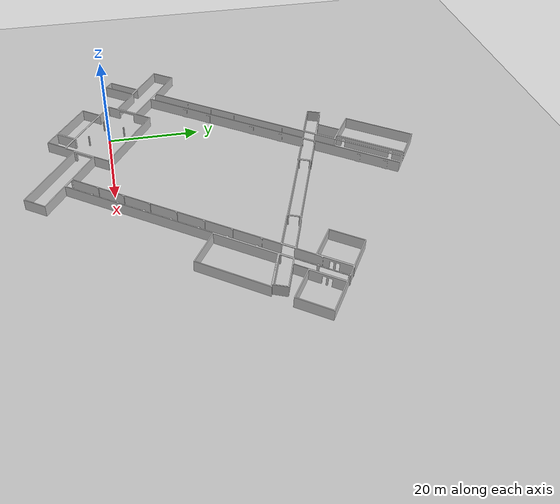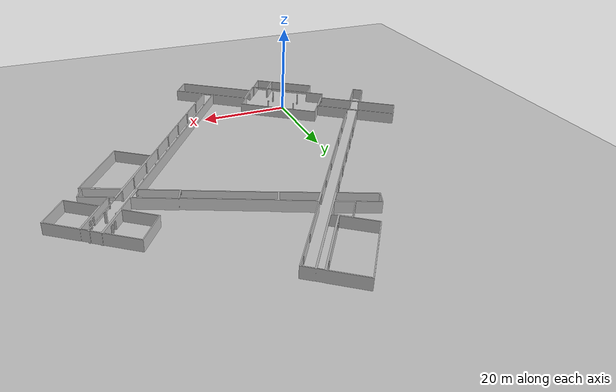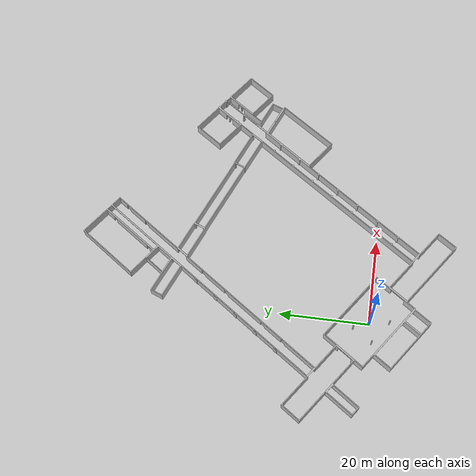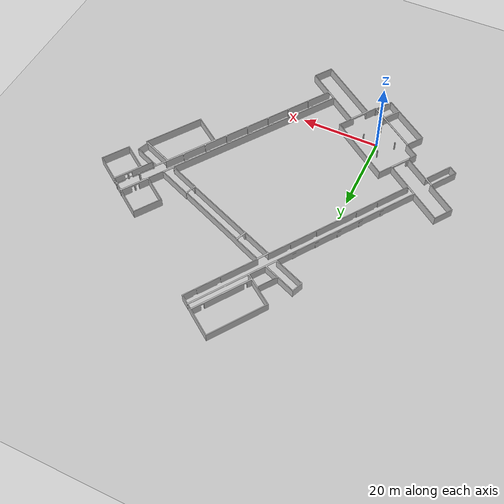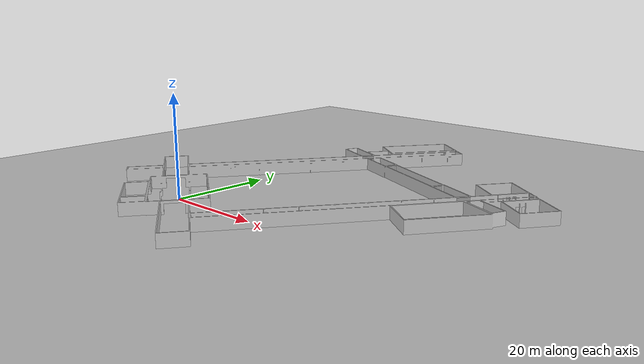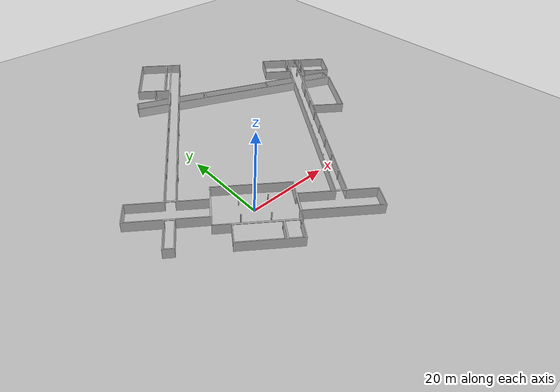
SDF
<?xml version='1.0' encoding='utf-8'?>
<sdf version="1.6">
  <world name="world">
    <gravity>0 0 -9.8</gravity>
    <physics default="0" name="default_physics" type="ode">
      <max_step_size>0.001</max_step_size>
      <real_time_factor>1</real_time_factor>
      <real_time_update_rate>1000</real_time_update_rate>
    </physics>
    <scene>
      <ambient>0.6 0.6 0.6 1</ambient>
      <background>0.4 0.4 0.4 1</background>
      <shadows>false</shadows>
    </scene>
    <include>
      <uri>model://sun</uri>
    </include>
    <include>
      <uri>model://ground_plane</uri>
      <pose>0 0 -0.1 0 -0 0</pose>
    </include>
    <model name="brsu_building_c_level_2">
      <include>
        <uri>model://brsu_building_c_level_2</uri>
        <static>true</static>
        <pose>-0.0 0.0 0.0 0.0 0.0 0.0</pose>
      </include>
    </model>
  </world>
</sdf>

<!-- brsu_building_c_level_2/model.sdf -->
<sdf version="1.6">
  <model name="brsu_building_c_level_2">
    <link name="link">
      <visual name="visual">
	    <geometry>
          <mesh>
            <uri>model://brsu_building_c_level_2/meshes/brsu_building_c_level_2.stl</uri>
          </mesh>
        </geometry>
      </visual>
      <collision name="collision">
        <geometry>
          <mesh>
            <uri>model://brsu_building_c_level_2/meshes/brsu_building_c_level_2.stl</uri>
          </mesh>
        </geometry>
      </collision>
</link>
  <static>1</static>
  </model>
</sdf>
